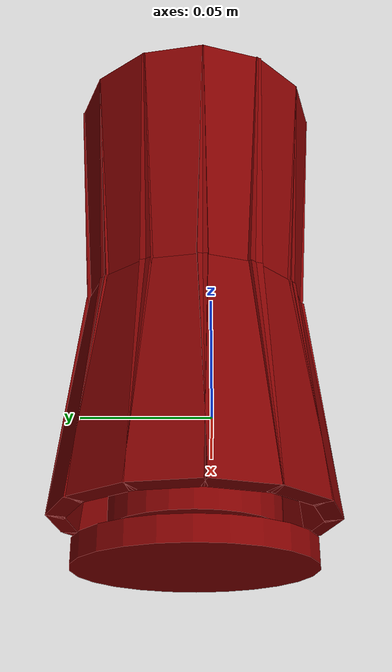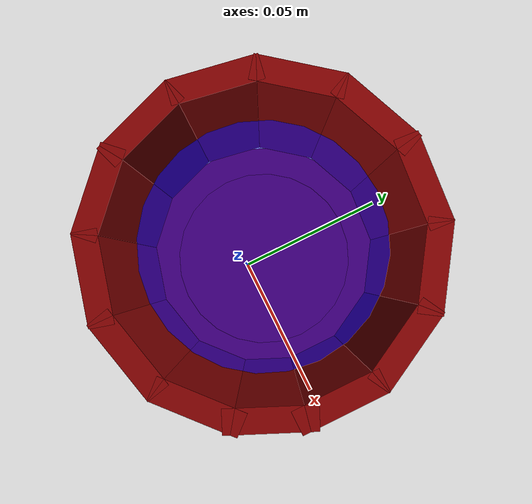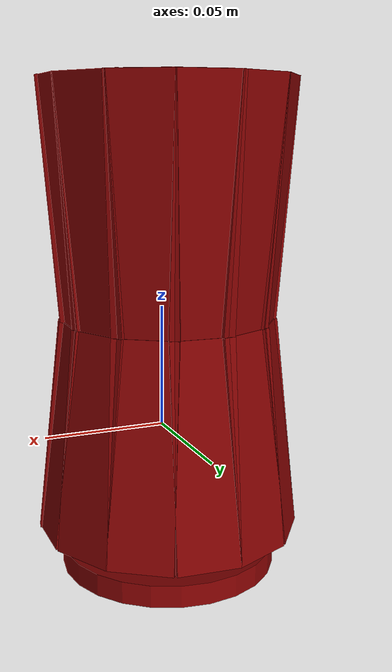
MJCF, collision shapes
<mujoco model="model">
  <option timestep="0.002" gravity="0.0 0.0 -9.81"/>
  <compiler angle="radian"/>
  <asset>
    <mesh file="visuals/blade.obj" name="blade_vis"/>
    <mesh file="visuals/pitcher.obj" name="pitcher_vis"/>
    <mesh file="visuals/pitcher_main.obj" name="pitcher_main_vis"/>
    <texture file="visuals/T_BC001.png" name="pitcher_material" type="2d"/>
    <material name="pitcher_material" rgba="1 1 1 0.800000011920929" texture="pitcher_material" shininess="0.4472135901451111" specular="0.3103448502657381"/>
    <texture file="visuals/T_BC001.png" name="blade_material" type="2d"/>
    <material name="blade_material" rgba="1 1 1 1.0" texture="blade_material" shininess="0.4472135901451111" specular="0.3103448502657381"/>
    <texture file="visuals/T_BC001.png" name="pitcher_main_material" type="2d"/>
    <material name="pitcher_main_material" rgba="1 1 1 1.0" texture="pitcher_main_material" shininess="0.4472135901451111" specular="0.3103448502657381"/>
  </asset>
  <default>
    <default class="visual">
      <geom conaffinity="0" contype="0" group="1" type="mesh"/>
    </default>
    <default class="collision">
      <geom group="0" rgba="0.5 0 0 0.5" density="1.0" solref="0.004 1" solimp="0.998 0.998 0.001"/>
    </default>
    <default class="spawn">
      <geom group="0" rgba="1 1 1 0.5" contype="0" conaffinity="0"/>
      <site group="0" rgba="1 1 1 0.5"/>
    </default>
    <default class="region">
      <geom group="1" conaffinity="0" contype="0" rgba="0 1 0 0" mass="0"/>
    </default>
  </default>
  <worldbody>
    <body>
      <body name="object">
        <body name="pitcher">
          <geom mesh="pitcher_vis" type="mesh" solimp="0.998 0.998 0.001" solref="0.001 1" friction="0.95 0.3 0.1" class="visual" material="pitcher_material"/>
          <geom type="box" pos="0.04333248 0.00646550 0.00355366" size="0.0035044727846980095 0.012674807570874691 0.04332708194851875" quat="0.9983056783676147 2.1190591700792887e-15 -0.05818738788366318 -7.81798892290908e-09" class="collision"/>
          <geom type="box" pos="0.04132131 0.00646551 0.09231527" size="0.0035068036522716284 0.012674807570874691 0.048212192952632904" quat="0.9992659687995911 2.45362172589345e-15 0.03830776736140251 5.146997050786695e-09" class="collision"/>
          <geom type="box" pos="0.03796790 0.02735042 0.00355366" size="0.003504473017528653 0.012674807570874691 0.04332708567380905" quat="0.9669170379638672 0.014476297423243523 -0.05635787919163704 0.24836596846580505" class="collision"/>
          <geom type="box" pos="0.03620569 0.02638118 0.09231527" size="0.003506803885102272 0.012674806639552116 0.0482121966779232" quat="0.9678471684455872 -0.009530461393296719 0.03710317239165306 0.248604878783226" class="collision"/>
          <geom type="box" pos="0.02369902 0.04274494 0.00355366" size="0.003504473017528653 0.012674807570874691 0.04332708194851875" quat="0.8779835104942322 0.02769414521753788 -0.05117426812648773 0.4751411974430084" class="collision"/>
          <geom type="box" pos="0.02259900 0.04106126 0.09231527" size="0.003506803885102272 0.012674807570874691 0.0482121966779232" quat="0.8788281083106995 -0.018232425674796104 0.03369055688381195 0.47559821605682373" class="collision"/>
          <geom type="box" pos="0.00328072 0.04967685 0.00355366" size="0.003504473017528653 0.012674807570874691 0.04332708194851875" quat="0.732168972492218 0.0395549014210701 -0.04267530143260956 0.6786330938339233" class="collision"/>
          <geom type="box" pos="0.00312829 0.04767146 0.09231527" size="0.003506803885102272 0.012674807570874691 0.0482121966779232" quat="0.7328732013702393 -0.02604093588888645 0.028095250949263573 0.6792859435081482" class="collision"/>
          <geom type="box" pos="-0.01692824 0.04635987 0.00355366" size="0.003504473017528653 0.012674807570874691 0.04332708194851875" quat="0.5510849952697754 0.048518408089876175 -0.032120585441589355 0.832417905330658" class="collision"/>
          <geom type="box" pos="-0.01614279 0.04450841 0.09231527" size="0.0035068036522716284 0.012674807570874691 0.0482121966779232" quat="0.5516152381896973 -0.03194207698106766 0.02114659734070301 0.8332185745239258" class="collision"/>
          <geom type="box" pos="-0.03405942 0.03326479 0.00355366" size="0.003504473017528653 0.012674807570874691 0.04332708194851875" quat="0.3266628086566925 0.054984088987112045 -0.019039904698729515 0.9433481097221375" class="collision"/>
          <geom type="box" pos="-0.03247893 0.03202105 0.09231527" size="0.003506803885102272 0.012674807570874691 0.0482121966779232" quat="0.3269769251346588 -0.03619876131415367 0.012534912675619125 0.9442555904388428" class="collision"/>
          <geom type="box" pos="-0.04265868 0.01411681 0.00355366" size="0.003504473017528653 0.012674807570874691 0.04332708939909935" quat="0.08847763389348984 0.057958297431468964 -0.005157011561095715 0.9943771958351135" class="collision"/>
          <geom type="box" pos="-0.04067911 0.01376172 0.09231527" size="0.0035068041179329157 0.012674807570874691 0.048212192952632904" quat="0.0885627493262291 -0.038156673312187195 0.003395108273252845 0.995333731174469" class="collision"/>
          <geom type="box" pos="-0.04106578 -0.00738717 0.00355365" size="0.003504473017528653 0.012674807570874691 0.04332708194851875" quat="0.16169296205043793 -0.057419054210186005 -0.009424450807273388 -0.9851241707801819" class="collision"/>
          <geom type="box" pos="-0.03916012 -0.00674430 0.09231527" size="0.0035068041179329157 0.012674807570874691 0.0482121966779232" quat="0.1618485003709793 0.037801697850227356 0.006204571109265089 -0.9860718250274658" class="collision"/>
          <geom type="box" pos="-0.03033342 -0.02448774 0.00355365" size="0.003504473017528653 0.012674807570874691 0.04332708194851875" quat="0.3867202699184418 -0.053644176572561264 -0.022540420293807983 -0.9203595519065857" class="collision"/>
          <geom type="box" pos="-0.02892584 -0.02305124 0.09231527" size="0.0035068041179329157 0.012674807570874691 0.0482121966779232" quat="0.38709238171577454 0.03531663864850998 0.014839478768408298 -0.9212448000907898" class="collision"/>
          <geom type="box" pos="-0.01166157 -0.03527293 0.00355365" size="0.0035044727846980095 0.012674808502197266 0.04332708194851875" quat="0.6035350561141968 -0.04634973034262657 -0.035177696496248245 -0.7952104806900024" class="collision"/>
          <geom type="box" pos="-0.01112052 -0.03333590 0.09231527" size="0.0035068036522716284 0.012674807570874691 0.0482121966779232" quat="0.6041155457496643 0.03051433339715004 0.023159237578511238 -0.7959754467010498" class="collision"/>
          <geom type="box" pos="0.00932065 -0.03585550 0.00355366" size="0.003504473017528653 0.012674807570874691 0.04332708194851875" quat="0.7781533598899841 -0.0364505834877491 -0.04535554721951485 -0.6253731846809387" class="collision"/>
          <geom type="box" pos="0.00888793 -0.03389143 0.09231527" size="0.0035068041179329157 0.012674807570874691 0.0482121966779232" quat="0.7789018750190735 0.023997221142053604 0.029859796166419983 -0.6259747743606567" class="collision"/>
          <geom type="box" pos="0.02856218 -0.02612298 0.00355365" size="0.0035044727846980095 0.012674806639552116 0.04332708194851875" quat="0.9092717170715332 -0.024020615965127945 -0.052997905761003494 -0.41211551427841187" class="collision"/>
          <geom type="box" pos="0.02723648 -0.02461058 0.09231527" size="0.003506803885102272 0.012674806639552116 0.0482121966779232" quat="0.9101463556289673 0.01581396348774433 0.03489115461707115 -0.41251200437545776" class="collision"/>
          <geom type="box" pos="0.03958975 -0.01115216 0.00355366" size="0.003504473017528653 0.012674807570874691 0.04332708194851875" quat="0.9765130281448364 -0.012091603130102158 -0.05691717192530632 -0.20745247602462769" class="collision"/>
          <geom type="box" pos="0.03775227 -0.01033453 0.09231527" size="0.0035068041179329157 0.012674807570874691 0.0482121966779232" quat="0.9774523973464966 0.007960498332977295 0.03747131675481796 -0.2076520472764969" class="collision"/>
          <body name="blade">
            <geom mesh="blade_vis" type="mesh" solimp="0.998 0.998 0.001" solref="0.001 1" friction="0.95 0.3 0.1" class="visual" material="blade_material"/>
            <geom type="cylinder" pos="-0.00000350 0.00646550 -0.03204990" size="0.031703922897577286 0.011009951122105122" quat="1.0 0.0 0.0 0.0" class="collision"/>
          </body>
          <body name="pitcher_main">
            <geom class="region" type="cylinder" size="0.03383820876479149 0.07321330904960632" pos="-0.00013724 0.00655650 0.05660385" rgba="0 0 1 0.5" name="reg_int"/>
            <geom mesh="pitcher_main_vis" type="mesh" solimp="0.998 0.998 0.001" solref="0.001 1" friction="0.95 0.3 0.1" class="visual" material="pitcher_main_material"/>
            <geom type="cylinder" pos="-0.00000350 0.00646550 -0.05209770" size="0.044104933738708496 0.004458223003894091" quat="1.0 0.0 0.0 0.0" class="collision"/>
          </body>
        </body>
        <geom class="region" name="reg_bbox" density="0" type="box" pos="-8.249999999999924e-05 0.0065784999999999975 0.04125899999999999" size="0.050742 0.050744 0.099824"/>
      </body>
      <site rgba="0 1 0 0" size="0.005" pos="-1.09494422e-04 6.57808673e-03 1.41758517e-01" name="anchor_site"/>
    </body>
  </worldbody>
</mujoco>
